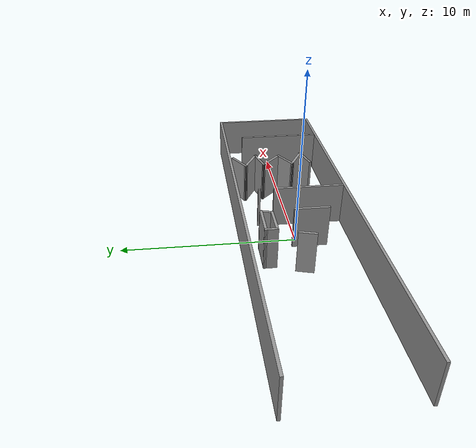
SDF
<sdf version="1.6">
 <model name="test2">
  <link name="Wall_31">
   <pose>0 3.17468 0 0 -0 0</pose>
   <visual name="Wall_31_Visual">
    <pose>0 0 1.25 0 -0 0</pose>
    <geometry><box><size>23.75 0.15 2.5</size></box></geometry>
    <material>
     <script><uri>file://media/materials/scripts/gazebo.material</uri><name>Gazebo/Grey</name></script>
     <ambient>1 1 1 1</ambient>
     <diffuse>0.7 0.7 0.7 1</diffuse>
     <specular>0.01 0.01 0.01 1</specular>
     <emissive>0 0 0 1</emissive>
    </material>
    <meta><layer>0</layer></meta>
   </visual>
   <collision name="Wall_31_Collision">
    <pose>0 0 1.25 0 -0 0</pose>
    <geometry><box><size>23.75 0.15 2.5</size></box></geometry>
    <surface>
     <friction>
      <ode><mu>1</mu><mu2>1</mu2><fdir1>0 0 0</fdir1><slip1>0</slip1><slip2>0</slip2></ode>
      <torsional>
       <coefficient>1</coefficient>
       <patch_radius>0</patch_radius>
       <surface_radius>0</surface_radius>
       <use_patch_radius>1</use_patch_radius>
       <ode><slip>0</slip></ode>
      </torsional>
     </friction>
     <bounce><restitution_coefficient>0</restitution_coefficient><threshold>1e+06</threshold></bounce>
     <contact>
      <collide_without_contact>0</collide_without_contact>
      <collide_without_contact_bitmask>1</collide_without_contact_bitmask>
      <collide_bitmask>1</collide_bitmask>
      <ode>
       <soft_cfm>0</soft_cfm>
       <soft_erp>0.2</soft_erp>
       <kp>1e+13</kp>
       <kd>1</kd>
       <max_vel>0.01</max_vel>
       <min_depth>0</min_depth>
      </ode>
      <bullet>
       <split_impulse>1</split_impulse>
       <split_impulse_penetration_threshold>-0.01</split_impulse_penetration_threshold>
       <soft_cfm>0</soft_cfm>
       <soft_erp>0.2</soft_erp>
       <kp>1e+13</kp>
       <kd>1</kd>
      </bullet>
     </contact>
    </surface>
   </collision>
  </link>
  <link name="Wall_32">
   <pose>11.8 -0.000324 0 0 0 -1.5708</pose>
   <visual name="Wall_32_Visual">
    <pose>0 0 1.25 0 -0 0</pose>
    <geometry><box><size>6.5 0.15 2.5</size></box></geometry>
    <material>
     <script><uri>file://media/materials/scripts/gazebo.material</uri><name>Gazebo/Grey</name></script>
     <ambient>1 1 1 1</ambient>
     <diffuse>0.7 0.7 0.7 1</diffuse>
     <specular>0.01 0.01 0.01 1</specular>
     <emissive>0 0 0 1</emissive>
    </material>
    <meta><layer>0</layer></meta>
   </visual>
   <collision name="Wall_32_Collision">
    <pose>0 0 1.25 0 -0 0</pose>
    <geometry><box><size>6.5 0.15 2.5</size></box></geometry>
    <surface>
     <friction>
      <ode><mu>1</mu><mu2>1</mu2><fdir1>0 0 0</fdir1><slip1>0</slip1><slip2>0</slip2></ode>
      <torsional>
       <coefficient>1</coefficient>
       <patch_radius>0</patch_radius>
       <surface_radius>0</surface_radius>
       <use_patch_radius>1</use_patch_radius>
       <ode><slip>0</slip></ode>
      </torsional>
     </friction>
     <bounce><restitution_coefficient>0</restitution_coefficient><threshold>1e+06</threshold></bounce>
     <contact>
      <collide_without_contact>0</collide_without_contact>
      <collide_without_contact_bitmask>1</collide_without_contact_bitmask>
      <collide_bitmask>1</collide_bitmask>
      <ode>
       <soft_cfm>0</soft_cfm>
       <soft_erp>0.2</soft_erp>
       <kp>1e+13</kp>
       <kd>1</kd>
       <max_vel>0.01</max_vel>
       <min_depth>0</min_depth>
      </ode>
      <bullet>
       <split_impulse>1</split_impulse>
       <split_impulse_penetration_threshold>-0.01</split_impulse_penetration_threshold>
       <soft_cfm>0</soft_cfm>
       <soft_erp>0.2</soft_erp>
       <kp>1e+13</kp>
       <kd>1</kd>
      </bullet>
     </contact>
    </surface>
   </collision>
  </link>
  <link name="Wall_33">
   <pose>0 -3.17532 0 0 -0 3.14159</pose>
   <visual name="Wall_33_Visual">
    <pose>0 0 1.25 0 -0 0</pose>
    <geometry><box><size>23.75 0.15 2.5</size></box></geometry>
    <material>
     <script><uri>file://media/materials/scripts/gazebo.material</uri><name>Gazebo/Grey</name></script>
     <ambient>1 1 1 1</ambient>
     <diffuse>0.7 0.7 0.7 1</diffuse>
     <specular>0.01 0.01 0.01 1</specular>
     <emissive>0 0 0 1</emissive>
    </material>
    <meta><layer>0</layer></meta>
   </visual>
   <collision name="Wall_33_Collision">
    <pose>0 0 1.25 0 -0 0</pose>
    <geometry><box><size>23.75 0.15 2.5</size></box></geometry>
    <surface>
     <friction>
      <ode><mu>1</mu><mu2>1</mu2><fdir1>0 0 0</fdir1><slip1>0</slip1><slip2>0</slip2></ode>
      <torsional>
       <coefficient>1</coefficient>
       <patch_radius>0</patch_radius>
       <surface_radius>0</surface_radius>
       <use_patch_radius>1</use_patch_radius>
       <ode><slip>0</slip></ode>
      </torsional>
     </friction>
     <bounce><restitution_coefficient>0</restitution_coefficient><threshold>1e+06</threshold></bounce>
     <contact>
      <collide_without_contact>0</collide_without_contact>
      <collide_without_contact_bitmask>1</collide_without_contact_bitmask>
      <collide_bitmask>1</collide_bitmask>
      <ode>
       <soft_cfm>0</soft_cfm>
       <soft_erp>0.2</soft_erp>
       <kp>1e+13</kp>
       <kd>1</kd>
       <max_vel>0.01</max_vel>
       <min_depth>0</min_depth>
      </ode>
      <bullet>
       <split_impulse>1</split_impulse>
       <split_impulse_penetration_threshold>-0.01</split_impulse_penetration_threshold>
       <soft_cfm>0</soft_cfm>
       <soft_erp>0.2</soft_erp>
       <kp>1e+13</kp>
       <kd>1</kd>
      </bullet>
     </contact>
    </surface>
   </collision>
  </link>
  <link name="Wall_61">
   <pose>-2.89677 0.089276 0 0 -0 1.309</pose>
   <visual name="Wall_61_Visual">
    <pose>0 0 1.25 0 -0 0</pose>
    <geometry><box><size>1 0.15 2.5</size></box></geometry>
    <material>
     <script><uri>file://media/materials/scripts/gazebo.material</uri><name>Gazebo/Grey</name></script>
     <ambient>1 1 1 1</ambient>
     <diffuse>0.7 0.7 0.7 1</diffuse>
     <specular>0.01 0.01 0.01 1</specular>
     <emissive>0 0 0 1</emissive>
    </material>
    <meta><layer>0</layer></meta>
   </visual>
   <collision name="Wall_61_Collision">
    <pose>0 0 1.25 0 -0 0</pose>
    <geometry><box><size>1 0.15 2.5</size></box></geometry>
    <surface>
     <friction>
      <ode><mu>1</mu><mu2>1</mu2><fdir1>0 0 0</fdir1><slip1>0</slip1><slip2>0</slip2></ode>
      <torsional>
       <coefficient>1</coefficient>
       <patch_radius>0</patch_radius>
       <surface_radius>0</surface_radius>
       <use_patch_radius>1</use_patch_radius>
       <ode><slip>0</slip></ode>
      </torsional>
     </friction>
     <bounce><restitution_coefficient>0</restitution_coefficient><threshold>1e+06</threshold></bounce>
     <contact>
      <collide_without_contact>0</collide_without_contact>
      <collide_without_contact_bitmask>1</collide_without_contact_bitmask>
      <collide_bitmask>1</collide_bitmask>
      <ode>
       <soft_cfm>0</soft_cfm>
       <soft_erp>0.2</soft_erp>
       <kp>1e+13</kp>
       <kd>1</kd>
       <max_vel>0.01</max_vel>
       <min_depth>0</min_depth>
      </ode>
      <bullet>
       <split_impulse>1</split_impulse>
       <split_impulse_penetration_threshold>-0.01</split_impulse_penetration_threshold>
       <soft_cfm>0</soft_cfm>
       <soft_erp>0.2</soft_erp>
       <kp>1e+13</kp>
       <kd>1</kd>
      </bullet>
     </contact>
    </surface>
   </collision>
  </link>
  <link name="Wall_65">
   <pose>-2.35537 1.88611 0 0 0 -1.5708</pose>
   <visual name="Wall_65_Visual">
    <pose>0 0 1.25 0 -0 0</pose>
    <geometry><box><size>0.75 0.15 2.5</size></box></geometry>
    <material>
     <script><uri>file://media/materials/scripts/gazebo.material</uri><name>Gazebo/Grey</name></script>
     <ambient>1 1 1 1</ambient>
     <diffuse>0.7 0.7 0.7 1</diffuse>
     <specular>0.01 0.01 0.01 1</specular>
     <emissive>0 0 0 1</emissive>
    </material>
    <meta><layer>0</layer></meta>
   </visual>
   <collision name="Wall_65_Collision">
    <pose>0 0 1.25 0 -0 0</pose>
    <geometry><box><size>0.75 0.15 2.5</size></box></geometry>
    <surface>
     <friction>
      <ode><mu>1</mu><mu2>1</mu2><fdir1>0 0 0</fdir1><slip1>0</slip1><slip2>0</slip2></ode>
      <torsional>
       <coefficient>1</coefficient>
       <patch_radius>0</patch_radius>
       <surface_radius>0</surface_radius>
       <use_patch_radius>1</use_patch_radius>
       <ode><slip>0</slip></ode>
      </torsional>
     </friction>
     <bounce><restitution_coefficient>0</restitution_coefficient><threshold>1e+06</threshold></bounce>
     <contact>
      <collide_without_contact>0</collide_without_contact>
      <collide_without_contact_bitmask>1</collide_without_contact_bitmask>
      <collide_bitmask>1</collide_bitmask>
      <ode>
       <soft_cfm>0</soft_cfm>
       <soft_erp>0.2</soft_erp>
       <kp>1e+13</kp>
       <kd>1</kd>
       <max_vel>0.01</max_vel>
       <min_depth>0</min_depth>
      </ode>
      <bullet>
       <split_impulse>1</split_impulse>
       <split_impulse_penetration_threshold>-0.01</split_impulse_penetration_threshold>
       <soft_cfm>0</soft_cfm>
       <soft_erp>0.2</soft_erp>
       <kp>1e+13</kp>
       <kd>1</kd>
      </bullet>
     </contact>
    </surface>
   </collision>
  </link>
  <link name="Wall_66">
   <pose>-1.55537 1.58611 0 0 -0 0</pose>
   <visual name="Wall_66_Visual">
    <pose>0 0 1.25 0 -0 0</pose>
    <geometry><box><size>1.75 0.15 2.5</size></box></geometry>
    <material>
     <script><uri>file://media/materials/scripts/gazebo.material</uri><name>Gazebo/Grey</name></script>
     <ambient>1 1 1 1</ambient>
     <diffuse>0.7 0.7 0.7 1</diffuse>
     <specular>0.01 0.01 0.01 1</specular>
     <emissive>0 0 0 1</emissive>
    </material>
    <meta><layer>0</layer></meta>
   </visual>
   <collision name="Wall_66_Collision">
    <pose>0 0 1.25 0 -0 0</pose>
    <geometry><box><size>1.75 0.15 2.5</size></box></geometry>
    <surface>
     <friction>
      <ode><mu>1</mu><mu2>1</mu2><fdir1>0 0 0</fdir1><slip1>0</slip1><slip2>0</slip2></ode>
      <torsional>
       <coefficient>1</coefficient>
       <patch_radius>0</patch_radius>
       <surface_radius>0</surface_radius>
       <use_patch_radius>1</use_patch_radius>
       <ode><slip>0</slip></ode>
      </torsional>
     </friction>
     <bounce><restitution_coefficient>0</restitution_coefficient><threshold>1e+06</threshold></bounce>
     <contact>
      <collide_without_contact>0</collide_without_contact>
      <collide_without_contact_bitmask>1</collide_without_contact_bitmask>
      <collide_bitmask>1</collide_bitmask>
      <ode>
       <soft_cfm>0</soft_cfm>
       <soft_erp>0.2</soft_erp>
       <kp>1e+13</kp>
       <kd>1</kd>
       <max_vel>0.01</max_vel>
       <min_depth>0</min_depth>
      </ode>
      <bullet>
       <split_impulse>1</split_impulse>
       <split_impulse_penetration_threshold>-0.01</split_impulse_penetration_threshold>
       <soft_cfm>0</soft_cfm>
       <soft_erp>0.2</soft_erp>
       <kp>1e+13</kp>
       <kd>1</kd>
      </bullet>
     </contact>
    </surface>
   </collision>
  </link>
  <link name="Wall_67">
   <pose>-0.677721 1.87589 0 0 -0 1.309</pose>
   <visual name="Wall_67_Visual">
    <pose>0 0 1.25 0 -0 0</pose>
    <geometry><box><size>0.75 0.15 2.5</size></box></geometry>
    <material>
     <script><uri>file://media/materials/scripts/gazebo.material</uri><name>Gazebo/Grey</name></script>
     <ambient>1 1 1 1</ambient>
     <diffuse>0.7 0.7 0.7 1</diffuse>
     <specular>0.01 0.01 0.01 1</specular>
     <emissive>0 0 0 1</emissive>
    </material>
    <meta><layer>0</layer></meta>
   </visual>
   <collision name="Wall_67_Collision">
    <pose>0 0 1.25 0 -0 0</pose>
    <geometry><box><size>0.75 0.15 2.5</size></box></geometry>
    <surface>
     <friction>
      <ode><mu>1</mu><mu2>1</mu2><fdir1>0 0 0</fdir1><slip1>0</slip1><slip2>0</slip2></ode>
      <torsional>
       <coefficient>1</coefficient>
       <patch_radius>0</patch_radius>
       <surface_radius>0</surface_radius>
       <use_patch_radius>1</use_patch_radius>
       <ode><slip>0</slip></ode>
      </torsional>
     </friction>
     <bounce><restitution_coefficient>0</restitution_coefficient><threshold>1e+06</threshold></bounce>
     <contact>
      <collide_without_contact>0</collide_without_contact>
      <collide_without_contact_bitmask>1</collide_without_contact_bitmask>
      <collide_bitmask>1</collide_bitmask>
      <ode>
       <soft_cfm>0</soft_cfm>
       <soft_erp>0.2</soft_erp>
       <kp>1e+13</kp>
       <kd>1</kd>
       <max_vel>0.01</max_vel>
       <min_depth>0</min_depth>
      </ode>
      <bullet>
       <split_impulse>1</split_impulse>
       <split_impulse_penetration_threshold>-0.01</split_impulse_penetration_threshold>
       <soft_cfm>0</soft_cfm>
       <soft_erp>0.2</soft_erp>
       <kp>1e+13</kp>
       <kd>1</kd>
      </bullet>
     </contact>
    </surface>
   </collision>
  </link>
  <link name="Wall_68">
   <pose>-1.47772 2.17589 0 0 -0 3.12995</pose>
   <visual name="Wall_68_Visual">
    <pose>0 0 1.25 0 -0 0</pose>
    <geometry><box><size>1.90541 0.15 2.5</size></box></geometry>
    <material>
     <script><uri>file://media/materials/scripts/gazebo.material</uri><name>Gazebo/Grey</name></script>
     <ambient>1 1 1 1</ambient>
     <diffuse>0.7 0.7 0.7 1</diffuse>
     <specular>0.01 0.01 0.01 1</specular>
     <emissive>0 0 0 1</emissive>
    </material>
    <meta><layer>0</layer></meta>
   </visual>
   <collision name="Wall_68_Collision">
    <pose>0 0 1.25 0 -0 0</pose>
    <geometry><box><size>1.90541 0.15 2.5</size></box></geometry>
    <surface>
     <friction>
      <ode><mu>1</mu><mu2>1</mu2><fdir1>0 0 0</fdir1><slip1>0</slip1><slip2>0</slip2></ode>
      <torsional>
       <coefficient>1</coefficient>
       <patch_radius>0</patch_radius>
       <surface_radius>0</surface_radius>
       <use_patch_radius>1</use_patch_radius>
       <ode><slip>0</slip></ode>
      </torsional>
     </friction>
     <bounce><restitution_coefficient>0</restitution_coefficient><threshold>1e+06</threshold></bounce>
     <contact>
      <collide_without_contact>0</collide_without_contact>
      <collide_without_contact_bitmask>1</collide_without_contact_bitmask>
      <collide_bitmask>1</collide_bitmask>
      <ode>
       <soft_cfm>0</soft_cfm>
       <soft_erp>0.2</soft_erp>
       <kp>1e+13</kp>
       <kd>1</kd>
       <max_vel>0.01</max_vel>
       <min_depth>0</min_depth>
      </ode>
      <bullet>
       <split_impulse>1</split_impulse>
       <split_impulse_penetration_threshold>-0.01</split_impulse_penetration_threshold>
       <soft_cfm>0</soft_cfm>
       <soft_erp>0.2</soft_erp>
       <kp>1e+13</kp>
       <kd>1</kd>
      </bullet>
     </contact>
    </surface>
   </collision>
  </link>
  <link name="Wall_72">
   <pose>-0.554357 -0.689713 0 0 -0 1.5708</pose>
   <inertial>
    <inertia><ixx>nan</ixx><ixy>0</ixy><ixz>0</ixz><iyy>nan</iyy><iyz>0</iyz><izz>nan</izz></inertia>
    <mass>0</mass>
   </inertial>
   <visual name="Wall_72_Visual">
    <pose>0 0 1.25 0 -0 0</pose>
    <geometry><box><size>2.02608 0.15 2.5</size></box></geometry>
    <material>
     <script><uri>file://media/materials/scripts/gazebo.material</uri><name>Gazebo/Grey</name></script>
     <ambient>1 1 1 1</ambient>
     <diffuse>0.7 0.7 0.7 1</diffuse>
     <specular>0.01 0.01 0.01 1</specular>
     <emissive>0 0 0 1</emissive>
    </material>
    <meta><layer>0</layer></meta>
   </visual>
   <collision name="Wall_72_Collision">
    <pose>0 0 1.25 0 -0 0</pose>
    <geometry><box><size>2.02608 0.15 2.5</size></box></geometry>
    <surface>
     <friction>
      <ode><mu>1</mu><mu2>1</mu2><fdir1>0 0 0</fdir1><slip1>0</slip1><slip2>0</slip2></ode>
      <torsional>
       <coefficient>1</coefficient>
       <patch_radius>0</patch_radius>
       <surface_radius>0</surface_radius>
       <use_patch_radius>1</use_patch_radius>
       <ode><slip>0</slip></ode>
      </torsional>
     </friction>
     <bounce><restitution_coefficient>0</restitution_coefficient><threshold>1e+06</threshold></bounce>
     <contact>
      <collide_without_contact>0</collide_without_contact>
      <collide_without_contact_bitmask>1</collide_without_contact_bitmask>
      <collide_bitmask>1</collide_bitmask>
      <ode>
       <soft_cfm>0</soft_cfm>
       <soft_erp>0.2</soft_erp>
       <kp>1e+13</kp>
       <kd>1</kd>
       <max_vel>0.01</max_vel>
       <min_depth>0</min_depth>
      </ode>
      <bullet>
       <split_impulse>1</split_impulse>
       <split_impulse_penetration_threshold>-0.01</split_impulse_penetration_threshold>
       <soft_cfm>0</soft_cfm>
       <soft_erp>0.2</soft_erp>
       <kp>1e+13</kp>
       <kd>1</kd>
      </bullet>
     </contact>
    </surface>
   </collision>
  </link>
  <link name="Wall_77">
   <pose>1.76924 1.89059 0 0 0 -1.5708</pose>
   <inertial>
    <inertia><ixx>nan</ixx><ixy>0</ixy><ixz>0</ixz><iyy>nan</iyy><iyz>0</iyz><izz>nan</izz></inertia>
    <mass>0</mass>
   </inertial>
   <visual name="Wall_77_Visual">
    <pose>0 0 1.25 0 -0 0</pose>
    <geometry><box><size>0.142238 0.15 2.5</size></box></geometry>
    <material>
     <script><uri>file://media/materials/scripts/gazebo.material</uri><name>Gazebo/Grey</name></script>
     <ambient>1 1 1 1</ambient>
     <diffuse>0.7 0.7 0.7 1</diffuse>
     <specular>0.01 0.01 0.01 1</specular>
     <emissive>0 0 0 1</emissive>
    </material>
    <meta><layer>0</layer></meta>
   </visual>
   <collision name="Wall_77_Collision">
    <pose>0 0 1.25 0 -0 0</pose>
    <geometry><box><size>0.142238 0.15 2.5</size></box></geometry>
    <surface>
     <friction>
      <ode><mu>1</mu><mu2>1</mu2><fdir1>0 0 0</fdir1><slip1>0</slip1><slip2>0</slip2></ode>
      <torsional>
       <coefficient>1</coefficient>
       <patch_radius>0</patch_radius>
       <surface_radius>0</surface_radius>
       <use_patch_radius>1</use_patch_radius>
       <ode><slip>0</slip></ode>
      </torsional>
     </friction>
     <bounce><restitution_coefficient>0</restitution_coefficient><threshold>1e+06</threshold></bounce>
     <contact>
      <collide_without_contact>0</collide_without_contact>
      <collide_without_contact_bitmask>1</collide_without_contact_bitmask>
      <collide_bitmask>1</collide_bitmask>
      <ode>
       <soft_cfm>0</soft_cfm>
       <soft_erp>0.2</soft_erp>
       <kp>1e+13</kp>
       <kd>1</kd>
       <max_vel>0.01</max_vel>
       <min_depth>0</min_depth>
      </ode>
      <bullet>
       <split_impulse>1</split_impulse>
       <split_impulse_penetration_threshold>-0.01</split_impulse_penetration_threshold>
       <soft_cfm>0</soft_cfm>
       <soft_erp>0.2</soft_erp>
       <kp>1e+13</kp>
       <kd>1</kd>
      </bullet>
     </contact>
    </surface>
   </collision>
  </link>
  <link name="Wall_79">
   <pose>1.7777 -1.07683 0 0 0 -1.5708</pose>
   <visual name="Wall_79_Visual">
    <pose>0 0 1.25 0 -0 0</pose>
    <geometry><box><size>4.25 0.15 2.5</size></box></geometry>
    <material>
     <script><uri>file://media/materials/scripts/gazebo.material</uri><name>Gazebo/Grey</name></script>
     <ambient>1 1 1 1</ambient>
     <diffuse>0.7 0.7 0.7 1</diffuse>
     <specular>0.01 0.01 0.01 1</specular>
     <emissive>0 0 0 1</emissive>
    </material>
    <meta><layer>0</layer></meta>
   </visual>
   <collision name="Wall_79_Collision">
    <pose>0 0 1.25 0 -0 0</pose>
    <geometry><box><size>4.25 0.15 2.5</size></box></geometry>
    <surface>
     <friction>
      <ode><mu>1</mu><mu2>1</mu2><fdir1>0 0 0</fdir1><slip1>0</slip1><slip2>0</slip2></ode>
      <torsional>
       <coefficient>1</coefficient>
       <patch_radius>0</patch_radius>
       <surface_radius>0</surface_radius>
       <use_patch_radius>1</use_patch_radius>
       <ode><slip>0</slip></ode>
      </torsional>
     </friction>
     <bounce><restitution_coefficient>0</restitution_coefficient><threshold>1e+06</threshold></bounce>
     <contact>
      <collide_without_contact>0</collide_without_contact>
      <collide_without_contact_bitmask>1</collide_without_contact_bitmask>
      <collide_bitmask>1</collide_bitmask>
      <ode>
       <soft_cfm>0</soft_cfm>
       <soft_erp>0.2</soft_erp>
       <kp>1e+13</kp>
       <kd>1</kd>
       <max_vel>0.01</max_vel>
       <min_depth>0</min_depth>
      </ode>
      <bullet>
       <split_impulse>1</split_impulse>
       <split_impulse_penetration_threshold>-0.01</split_impulse_penetration_threshold>
       <soft_cfm>0</soft_cfm>
       <soft_erp>0.2</soft_erp>
       <kp>1e+13</kp>
       <kd>1</kd>
      </bullet>
     </contact>
    </surface>
   </collision>
  </link>
  <link name="Wall_81">
   <pose>5.34884 2.62425 0 0 0 -2.61799</pose>
   <visual name="Wall_81_Visual">
    <pose>0 0 1.25 0 -0 0</pose>
    <geometry><box><size>1.5 0.15 2.5</size></box></geometry>
    <material>
     <script><uri>file://media/materials/scripts/gazebo.material</uri><name>Gazebo/Grey</name></script>
     <ambient>1 1 1 1</ambient>
     <diffuse>0.7 0.7 0.7 1</diffuse>
     <specular>0.01 0.01 0.01 1</specular>
     <emissive>0 0 0 1</emissive>
    </material>
    <meta><layer>0</layer></meta>
   </visual>
   <collision name="Wall_81_Collision">
    <pose>0 0 1.25 0 -0 0</pose>
    <geometry><box><size>1.5 0.15 2.5</size></box></geometry>
    <surface>
     <friction>
      <ode><mu>1</mu><mu2>1</mu2><fdir1>0 0 0</fdir1><slip1>0</slip1><slip2>0</slip2></ode>
      <torsional>
       <coefficient>1</coefficient>
       <patch_radius>0</patch_radius>
       <surface_radius>0</surface_radius>
       <use_patch_radius>1</use_patch_radius>
       <ode><slip>0</slip></ode>
      </torsional>
     </friction>
     <bounce><restitution_coefficient>0</restitution_coefficient><threshold>1e+06</threshold></bounce>
     <contact>
      <collide_without_contact>0</collide_without_contact>
      <collide_without_contact_bitmask>1</collide_without_contact_bitmask>
      <collide_bitmask>1</collide_bitmask>
      <ode>
       <soft_cfm>0</soft_cfm>
       <soft_erp>0.2</soft_erp>
       <kp>1e+13</kp>
       <kd>1</kd>
       <max_vel>0.01</max_vel>
       <min_depth>0</min_depth>
      </ode>
      <bullet>
       <split_impulse>1</split_impulse>
       <split_impulse_penetration_threshold>-0.01</split_impulse_penetration_threshold>
       <soft_cfm>0</soft_cfm>
       <soft_erp>0.2</soft_erp>
       <kp>1e+13</kp>
       <kd>1</kd>
      </bullet>
     </contact>
    </surface>
   </collision>
  </link>
  <link name="Wall_82">
   <pose>5.45709 1.88675 0 0 0 -0.523599</pose>
   <visual name="Wall_82_Visual">
    <pose>0 0 1.25 0 -0 0</pose>
    <geometry><box><size>1.75 0.15 2.5</size></box></geometry>
    <material>
     <script><uri>file://media/materials/scripts/gazebo.material</uri><name>Gazebo/Grey</name></script>
     <ambient>1 1 1 1</ambient>
     <diffuse>0.7 0.7 0.7 1</diffuse>
     <specular>0.01 0.01 0.01 1</specular>
     <emissive>0 0 0 1</emissive>
    </material>
    <meta><layer>0</layer></meta>
   </visual>
   <collision name="Wall_82_Collision">
    <pose>0 0 1.25 0 -0 0</pose>
    <geometry><box><size>1.75 0.15 2.5</size></box></geometry>
    <surface>
     <friction>
      <ode><mu>1</mu><mu2>1</mu2><fdir1>0 0 0</fdir1><slip1>0</slip1><slip2>0</slip2></ode>
      <torsional>
       <coefficient>1</coefficient>
       <patch_radius>0</patch_radius>
       <surface_radius>0</surface_radius>
       <use_patch_radius>1</use_patch_radius>
       <ode><slip>0</slip></ode>
      </torsional>
     </friction>
     <bounce><restitution_coefficient>0</restitution_coefficient><threshold>1e+06</threshold></bounce>
     <contact>
      <collide_without_contact>0</collide_without_contact>
      <collide_without_contact_bitmask>1</collide_without_contact_bitmask>
      <collide_bitmask>1</collide_bitmask>
      <ode>
       <soft_cfm>0</soft_cfm>
       <soft_erp>0.2</soft_erp>
       <kp>1e+13</kp>
       <kd>1</kd>
       <max_vel>0.01</max_vel>
       <min_depth>0</min_depth>
      </ode>
      <bullet>
       <split_impulse>1</split_impulse>
       <split_impulse_penetration_threshold>-0.01</split_impulse_penetration_threshold>
       <soft_cfm>0</soft_cfm>
       <soft_erp>0.2</soft_erp>
       <kp>1e+13</kp>
       <kd>1</kd>
      </bullet>
     </contact>
    </surface>
   </collision>
  </link>
  <link name="Wall_84">
   <pose>5.49791 1.31205 0 0 0 -2.87979</pose>
   <visual name="Wall_84_Visual">
    <pose>0 0 1.25 0 -0 0</pose>
    <geometry><box><size>1.5 0.15 2.5</size></box></geometry>
    <material>
     <script><uri>file://media/materials/scripts/gazebo.material</uri><name>Gazebo/Grey</name></script>
     <ambient>1 1 1 1</ambient>
     <diffuse>0.7 0.7 0.7 1</diffuse>
     <specular>0.01 0.01 0.01 1</specular>
     <emissive>0 0 0 1</emissive>
    </material>
    <meta><layer>0</layer></meta>
   </visual>
   <collision name="Wall_84_Collision">
    <pose>0 0 1.25 0 -0 0</pose>
    <geometry><box><size>1.5 0.15 2.5</size></box></geometry>
    <surface>
     <friction>
      <ode><mu>1</mu><mu2>1</mu2><fdir1>0 0 0</fdir1><slip1>0</slip1><slip2>0</slip2></ode>
      <torsional>
       <coefficient>1</coefficient>
       <patch_radius>0</patch_radius>
       <surface_radius>0</surface_radius>
       <use_patch_radius>1</use_patch_radius>
       <ode><slip>0</slip></ode>
      </torsional>
     </friction>
     <bounce><restitution_coefficient>0</restitution_coefficient><threshold>1e+06</threshold></bounce>
     <contact>
      <collide_without_contact>0</collide_without_contact>
      <collide_without_contact_bitmask>1</collide_without_contact_bitmask>
      <collide_bitmask>1</collide_bitmask>
      <ode>
       <soft_cfm>0</soft_cfm>
       <soft_erp>0.2</soft_erp>
       <kp>1e+13</kp>
       <kd>1</kd>
       <max_vel>0.01</max_vel>
       <min_depth>0</min_depth>
      </ode>
      <bullet>
       <split_impulse>1</split_impulse>
       <split_impulse_penetration_threshold>-0.01</split_impulse_penetration_threshold>
       <soft_cfm>0</soft_cfm>
       <soft_erp>0.2</soft_erp>
       <kp>1e+13</kp>
       <kd>1</kd>
      </bullet>
     </contact>
    </surface>
   </collision>
  </link>
  <link name="Wall_85">
   <pose>5.41159 0.571662 0 0 0 -0.785398</pose>
   <visual name="Wall_85_Visual">
    <pose>0 0 1.25 0 -0 0</pose>
    <geometry><box><size>1.75 0.15 2.5</size></box></geometry>
    <material>
     <script><uri>file://media/materials/scripts/gazebo.material</uri><name>Gazebo/Grey</name></script>
     <ambient>1 1 1 1</ambient>
     <diffuse>0.7 0.7 0.7 1</diffuse>
     <specular>0.01 0.01 0.01 1</specular>
     <emissive>0 0 0 1</emissive>
    </material>
    <meta><layer>0</layer></meta>
   </visual>
   <collision name="Wall_85_Collision">
    <pose>0 0 1.25 0 -0 0</pose>
    <geometry><box><size>1.75 0.15 2.5</size></box></geometry>
    <surface>
     <friction>
      <ode><mu>1</mu><mu2>1</mu2><fdir1>0 0 0</fdir1><slip1>0</slip1><slip2>0</slip2></ode>
      <torsional>
       <coefficient>1</coefficient>
       <patch_radius>0</patch_radius>
       <surface_radius>0</surface_radius>
       <use_patch_radius>1</use_patch_radius>
       <ode><slip>0</slip></ode>
      </torsional>
     </friction>
     <bounce><restitution_coefficient>0</restitution_coefficient><threshold>1e+06</threshold></bounce>
     <contact>
      <collide_without_contact>0</collide_without_contact>
      <collide_without_contact_bitmask>1</collide_without_contact_bitmask>
      <collide_bitmask>1</collide_bitmask>
      <ode>
       <soft_cfm>0</soft_cfm>
       <soft_erp>0.2</soft_erp>
       <kp>1e+13</kp>
       <kd>1</kd>
       <max_vel>0.01</max_vel>
       <min_depth>0</min_depth>
      </ode>
      <bullet>
       <split_impulse>1</split_impulse>
       <split_impulse_penetration_threshold>-0.01</split_impulse_penetration_threshold>
       <soft_cfm>0</soft_cfm>
       <soft_erp>0.2</soft_erp>
       <kp>1e+13</kp>
       <kd>1</kd>
      </bullet>
     </contact>
    </surface>
   </collision>
  </link>
  <link name="Wall_86">
   <pose>5.39271 -0.331523 0 0 0 -2.61799</pose>
   <visual name="Wall_86_Visual">
    <pose>0 0 1.25 0 -0 0</pose>
    <geometry><box><size>1.5 0.15 2.5</size></box></geometry>
    <material>
     <script><uri>file://media/materials/scripts/gazebo.material</uri><name>Gazebo/Grey</name></script>
     <ambient>1 1 1 1</ambient>
     <diffuse>0.7 0.7 0.7 1</diffuse>
     <specular>0.01 0.01 0.01 1</specular>
     <emissive>0 0 0 1</emissive>
    </material>
    <meta><layer>0</layer></meta>
   </visual>
   <collision name="Wall_86_Collision">
    <pose>0 0 1.25 0 -0 0</pose>
    <geometry><box><size>1.5 0.15 2.5</size></box></geometry>
    <surface>
     <friction>
      <ode><mu>1</mu><mu2>1</mu2><fdir1>0 0 0</fdir1><slip1>0</slip1><slip2>0</slip2></ode>
      <torsional>
       <coefficient>1</coefficient>
       <patch_radius>0</patch_radius>
       <surface_radius>0</surface_radius>
       <use_patch_radius>1</use_patch_radius>
       <ode><slip>0</slip></ode>
      </torsional>
     </friction>
     <bounce><restitution_coefficient>0</restitution_coefficient><threshold>1e+06</threshold></bounce>
     <contact>
      <collide_without_contact>0</collide_without_contact>
      <collide_without_contact_bitmask>1</collide_without_contact_bitmask>
      <collide_bitmask>1</collide_bitmask>
      <ode>
       <soft_cfm>0</soft_cfm>
       <soft_erp>0.2</soft_erp>
       <kp>1e+13</kp>
       <kd>1</kd>
       <max_vel>0.01</max_vel>
       <min_depth>0</min_depth>
      </ode>
      <bullet>
       <split_impulse>1</split_impulse>
       <split_impulse_penetration_threshold>-0.01</split_impulse_penetration_threshold>
       <soft_cfm>0</soft_cfm>
       <soft_erp>0.2</soft_erp>
       <kp>1e+13</kp>
       <kd>1</kd>
      </bullet>
     </contact>
    </surface>
   </collision>
  </link>
  <link name="Wall_87">
   <pose>5.50097 -1.06902 0 0 0 -0.523599</pose>
   <visual name="Wall_87_Visual">
    <pose>0 0 1.25 0 -0 0</pose>
    <geometry><box><size>1.75 0.15 2.5</size></box></geometry>
    <material>
     <script><uri>file://media/materials/scripts/gazebo.material</uri><name>Gazebo/Grey</name></script>
     <ambient>1 1 1 1</ambient>
     <diffuse>0.7 0.7 0.7 1</diffuse>
     <specular>0.01 0.01 0.01 1</specular>
     <emissive>0 0 0 1</emissive>
    </material>
    <meta><layer>0</layer></meta>
   </visual>
   <collision name="Wall_87_Collision">
    <pose>0 0 1.25 0 -0 0</pose>
    <geometry><box><size>1.75 0.15 2.5</size></box></geometry>
    <surface>
     <friction>
      <ode><mu>1</mu><mu2>1</mu2><fdir1>0 0 0</fdir1><slip1>0</slip1><slip2>0</slip2></ode>
      <torsional>
       <coefficient>1</coefficient>
       <patch_radius>0</patch_radius>
       <surface_radius>0</surface_radius>
       <use_patch_radius>1</use_patch_radius>
       <ode><slip>0</slip></ode>
      </torsional>
     </friction>
     <bounce><restitution_coefficient>0</restitution_coefficient><threshold>1e+06</threshold></bounce>
     <contact>
      <collide_without_contact>0</collide_without_contact>
      <collide_without_contact_bitmask>1</collide_without_contact_bitmask>
      <collide_bitmask>1</collide_bitmask>
      <ode>
       <soft_cfm>0</soft_cfm>
       <soft_erp>0.2</soft_erp>
       <kp>1e+13</kp>
       <kd>1</kd>
       <max_vel>0.01</max_vel>
       <min_depth>0</min_depth>
      </ode>
      <bullet>
       <split_impulse>1</split_impulse>
       <split_impulse_penetration_threshold>-0.01</split_impulse_penetration_threshold>
       <soft_cfm>0</soft_cfm>
       <soft_erp>0.2</soft_erp>
       <kp>1e+13</kp>
       <kd>1</kd>
      </bullet>
     </contact>
    </surface>
   </collision>
  </link>
  <link name="Wall_88">
   <pose>5.54179 -1.64373 0 0 0 -2.87979</pose>
   <visual name="Wall_88_Visual">
    <pose>0 0 1.25 0 -0 0</pose>
    <geometry><box><size>1.5 0.15 2.5</size></box></geometry>
    <material>
     <script><uri>file://media/materials/scripts/gazebo.material</uri><name>Gazebo/Grey</name></script>
     <ambient>1 1 1 1</ambient>
     <diffuse>0.7 0.7 0.7 1</diffuse>
     <specular>0.01 0.01 0.01 1</specular>
     <emissive>0 0 0 1</emissive>
    </material>
    <meta><layer>0</layer></meta>
   </visual>
   <collision name="Wall_88_Collision">
    <pose>0 0 1.25 0 -0 0</pose>
    <geometry><box><size>1.5 0.15 2.5</size></box></geometry>
    <surface>
     <friction>
      <ode><mu>1</mu><mu2>1</mu2><fdir1>0 0 0</fdir1><slip1>0</slip1><slip2>0</slip2></ode>
      <torsional>
       <coefficient>1</coefficient>
       <patch_radius>0</patch_radius>
       <surface_radius>0</surface_radius>
       <use_patch_radius>1</use_patch_radius>
       <ode><slip>0</slip></ode>
      </torsional>
     </friction>
     <bounce><restitution_coefficient>0</restitution_coefficient><threshold>1e+06</threshold></bounce>
     <contact>
      <collide_without_contact>0</collide_without_contact>
      <collide_without_contact_bitmask>1</collide_without_contact_bitmask>
      <collide_bitmask>1</collide_bitmask>
      <ode>
       <soft_cfm>0</soft_cfm>
       <soft_erp>0.2</soft_erp>
       <kp>1e+13</kp>
       <kd>1</kd>
       <max_vel>0.01</max_vel>
       <min_depth>0</min_depth>
      </ode>
      <bullet>
       <split_impulse>1</split_impulse>
       <split_impulse_penetration_threshold>-0.01</split_impulse_penetration_threshold>
       <soft_cfm>0</soft_cfm>
       <soft_erp>0.2</soft_erp>
       <kp>1e+13</kp>
       <kd>1</kd>
      </bullet>
     </contact>
    </surface>
   </collision>
  </link>
  <link name="Wall_90">
   <pose>9.03162 -0.624957 0 0 -0 1.5708</pose>
   <visual name="Wall_90_Visual">
    <pose>0 0 1.25 0 -0 0</pose>
    <geometry><box><size>5.25 0.15 2.5</size></box></geometry>
    <material>
     <script><uri>file://media/materials/scripts/gazebo.material</uri><name>Gazebo/Grey</name></script>
     <ambient>1 1 1 1</ambient>
     <diffuse>0.7 0.7 0.7 1</diffuse>
     <specular>0.01 0.01 0.01 1</specular>
     <emissive>0 0 0 1</emissive>
    </material>
    <meta><layer>0</layer></meta>
   </visual>
   <collision name="Wall_90_Collision">
    <pose>0 0 1.25 0 -0 0</pose>
    <geometry><box><size>5.25 0.15 2.5</size></box></geometry>
    <surface>
     <friction>
      <ode><mu>1</mu><mu2>1</mu2><fdir1>0 0 0</fdir1><slip1>0</slip1><slip2>0</slip2></ode>
      <torsional>
       <coefficient>1</coefficient>
       <patch_radius>0</patch_radius>
       <surface_radius>0</surface_radius>
       <use_patch_radius>1</use_patch_radius>
       <ode><slip>0</slip></ode>
      </torsional>
     </friction>
     <bounce><restitution_coefficient>0</restitution_coefficient><threshold>1e+06</threshold></bounce>
     <contact>
      <collide_without_contact>0</collide_without_contact>
      <collide_without_contact_bitmask>1</collide_without_contact_bitmask>
      <collide_bitmask>1</collide_bitmask>
      <ode>
       <soft_cfm>0</soft_cfm>
       <soft_erp>0.2</soft_erp>
       <kp>1e+13</kp>
       <kd>1</kd>
       <max_vel>0.01</max_vel>
       <min_depth>0</min_depth>
      </ode>
      <bullet>
       <split_impulse>1</split_impulse>
       <split_impulse_penetration_threshold>-0.01</split_impulse_penetration_threshold>
       <soft_cfm>0</soft_cfm>
       <soft_erp>0.2</soft_erp>
       <kp>1e+13</kp>
       <kd>1</kd>
      </bullet>
     </contact>
    </surface>
   </collision>
  </link>
  <static>1</static>
 </model>
</sdf>
